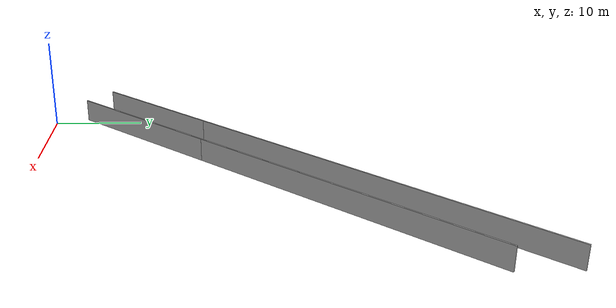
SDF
<?xml version="1.0" ?>
<sdf version="1.6">
  <model name="sps_1345">
    <pose frame="">0 0 0 0 -0 0</pose>
    <static>1</static>
    <self_collide>0</self_collide>
    <allow_auto_disable>0</allow_auto_disable>
    <link name="Wall230">
      <kinematic>0</kinematic>
      <gravity>1</gravity>
      <self_collide>0</self_collide>
      <collision name="collision">
        <geometry>
          <box>
            <size>35.7402 0.15 2.5</size>
          </box>
        </geometry>
        <pose frame="">0 0 0 0 -0 0</pose>
      </collision>
      <visual name="visual">
        <geometry>
          <box>
            <size>35.7402 0.15 2.5</size>
          </box>
        </geometry>
        <pose frame="">0 0 0 0 -0 0</pose>
        <cast_shadows>1</cast_shadows>
        <transparency>0.0</transparency>
      </visual>
      <pose frame="">22.7946 31.4223 1.25 0 0 -2.28275</pose>
    </link>
    <link name="Wall231">
      <kinematic>0</kinematic>
      <gravity>1</gravity>
      <self_collide>0</self_collide>
      <collision name="collision">
        <geometry>
          <box>
            <size>18.876 0.15 2.5</size>
          </box>
        </geometry>
        <pose frame="">0 0 0 0 -0 0</pose>
      </collision>
      <visual name="visual">
        <geometry>
          <box>
            <size>18.876 0.15 2.5</size>
          </box>
        </geometry>
        <pose frame="">0 0 0 0 -0 0</pose>
        <cast_shadows>1</cast_shadows>
        <transparency>0.0</transparency>
      </visual>
      <pose frame="">4.95385 10.7477 1.25 0 0 -2.28275</pose>
    </link>
    <link name="Wall451">
      <kinematic>0</kinematic>
      <gravity>1</gravity>
      <self_collide>0</self_collide>
      <collision name="collision">
        <geometry>
          <box>
            <size>43.8283 0.15 2.5</size>
          </box>
        </geometry>
        <pose frame="">0 0 0 0 -0 0</pose>
      </collision>
      <visual name="visual">
        <geometry>
          <box>
            <size>43.8283 0.15 2.5</size>
          </box>
        </geometry>
        <pose frame="">0 0 0 0 -0 0</pose>
        <cast_shadows>1</cast_shadows>
        <transparency>0.0</transparency>
      </visual>
      <pose frame="">20.1528 34.4841 1.25 0 0 -2.28274</pose>
    </link>
    <link name="Wall452">
      <kinematic>0</kinematic>
      <gravity>1</gravity>
      <self_collide>0</self_collide>
      <collision name="collision">
        <geometry>
          <box>
            <size>15.4266 0.15 2.5</size>
          </box>
        </geometry>
        <pose frame="">0 0 0 0 -0 0</pose>
      </collision>
      <visual name="visual">
        <geometry>
          <box>
            <size>15.4266 0.15 2.5</size>
          </box>
        </geometry>
        <pose frame="">0 0 0 0 -0 0</pose>
        <cast_shadows>1</cast_shadows>
        <transparency>0.0</transparency>
      </visual>
      <pose frame="">0.796986 12.0534 1.25 0 0 -2.28274</pose>
    </link>
  </model>
</sdf>
